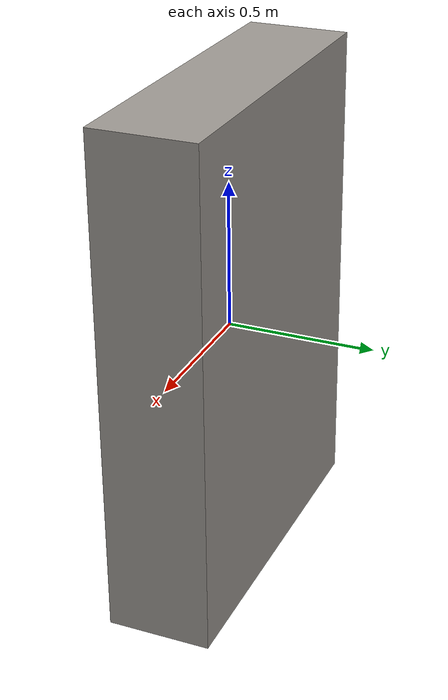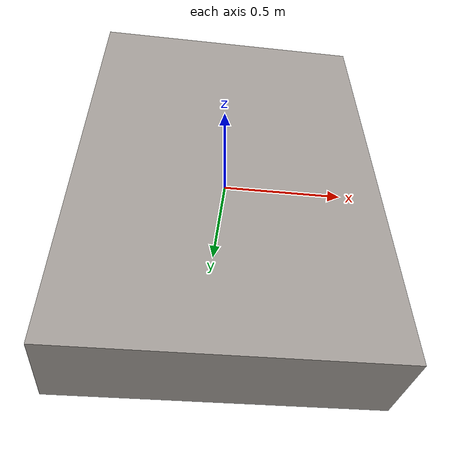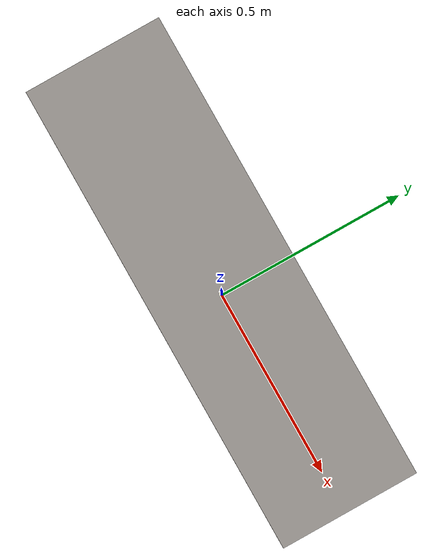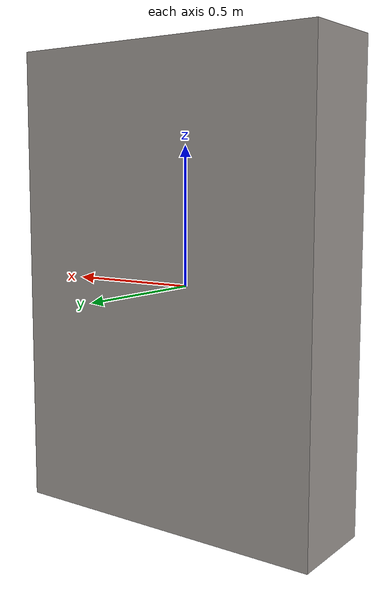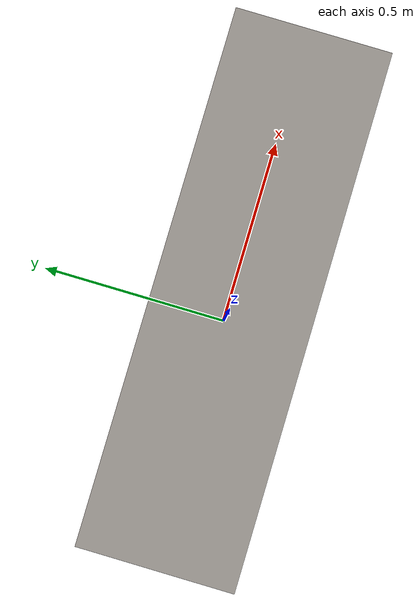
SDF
<?xml version="1.0"?>
<sdf version="1.6">
  <model name="lounge_display">
    <static>true</static>
    <link name="link">
      <collision name="col">
        <geometry>
          <box>
            <size>1.2 0.35 1.7</size>
          </box>
        </geometry>
      </collision>
      <visual name="vis">
        <geometry>
          <box>
            <size>1.2 0.35 1.7</size>
          </box>
        </geometry>
        <material>
          <ambient>0.62 0.6 0.58 1</ambient>
          <diffuse>0.62 0.6 0.58 1</diffuse>
        </material>
      </visual>
    </link>
  </model>
</sdf>
